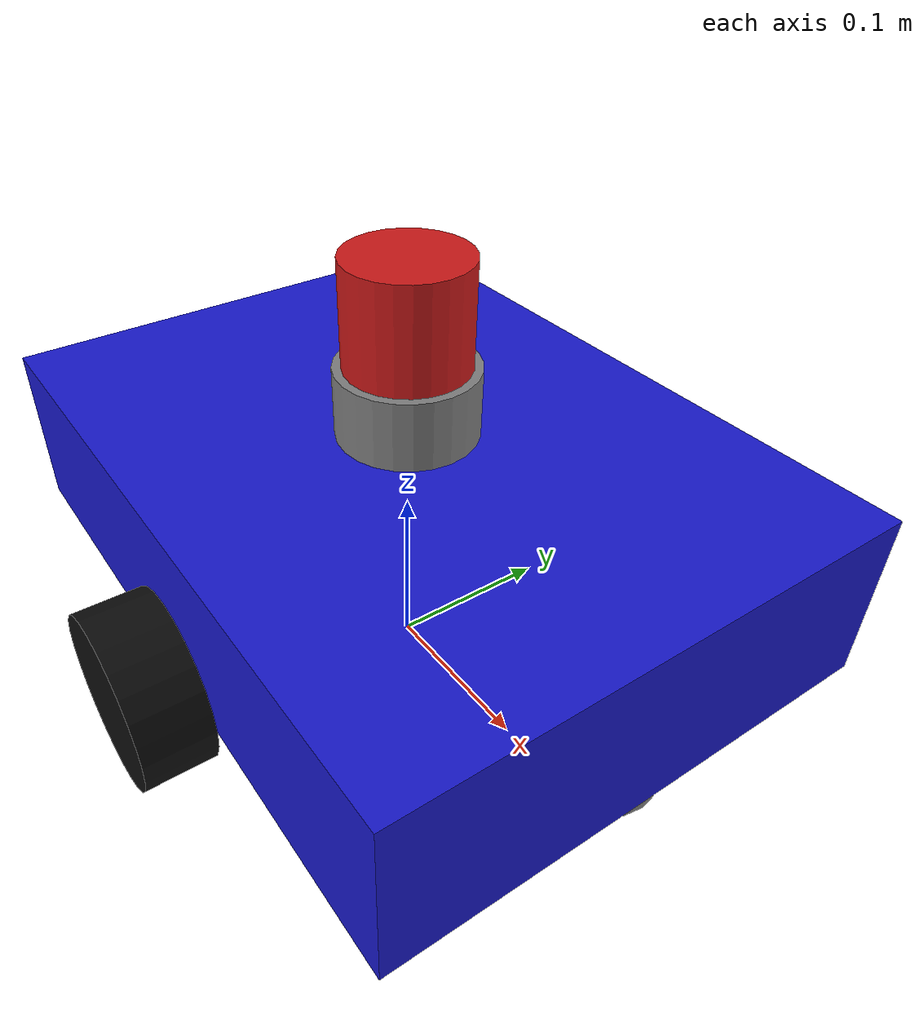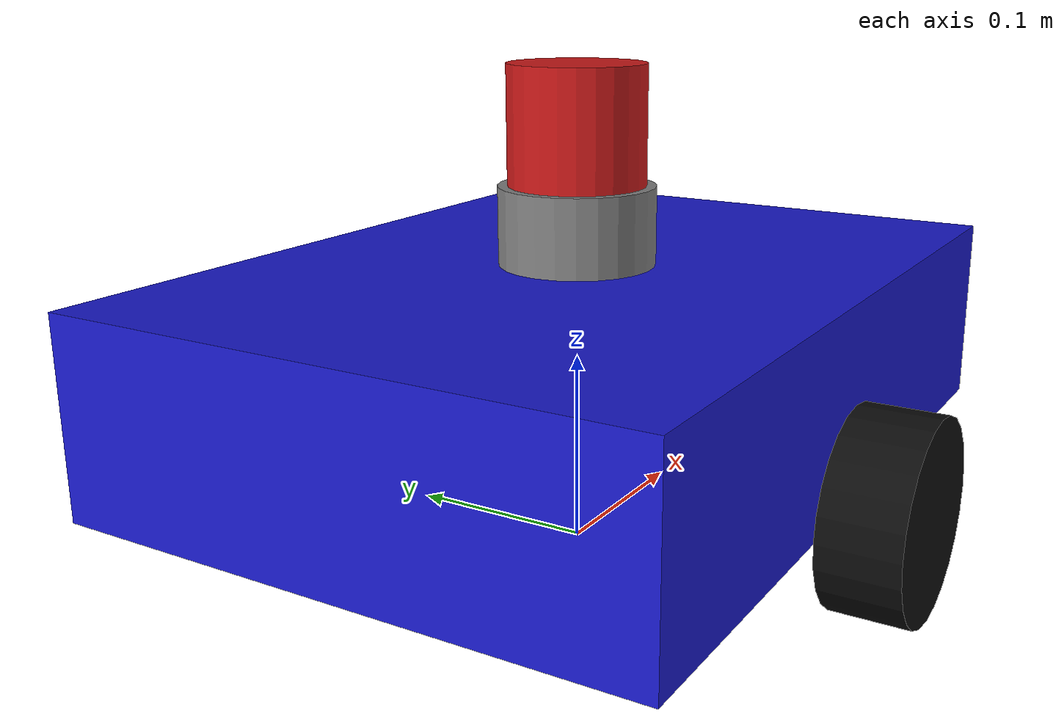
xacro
<?xml version="1.0"?>
<robot name="default_robot" xmlns:xacro="http://www.ros.org/wiki/xacro">

    <xacro:arg name="robot_name" default="robot_001"/>

    <!-- Chassis -->
    <xacro:property name="chassis_length" value="0.4"/>  <!-- meters -->
    <xacro:property name="chassis_width"  value="0.3"/>
    <xacro:property name="chassis_height" value="0.1"/>
    <xacro:property name="chassis_mass"   value="5.0"/>  <!-- kg -->

    <!-- Drive wheels (x2) -->
    <xacro:property name="wheel_radius"   value="0.05"/>
    <xacro:property name="wheel_width"    value="0.04"/>
    <xacro:property name="wheel_mass"     value="0.5"/>

    <!-- Front caster wheel (passive, for stability) -->
    <xacro:property name="caster_radius"  value="0.025"/>

    <!-- LiDAR sensor -->
    <xacro:property name="lidar_height"   value="0.18"/>

    <!-- =====================================================
        MATERIALS (colors for RViz visualization)
        ===================================================== -->
    <material name="dark_blue">
        <color rgba="0.1 0.1 0.8 1.0"/>
    </material>
    <material name="black">
        <color rgba="0.05 0.05 0.05 1.0"/>
    </material>
    <material name="gray">
        <color rgba="0.5 0.5 0.5 1.0"/>
    </material>
    <material name="red">
        <color rgba="0.8 0.1 0.1 1.0"/>
    </material>

    <link name="base_footprint"/>

    <joint name="base_joint" type="fixed">
        <parent link="base_footprint"/>
        <child  link="base_link"/>
        <!-- Raise chassis above ground: wheel radius + half chassis height -->
        <origin xyz="0 0 ${wheel_radius + chassis_height/2}" rpy="0 0 0"/>
    </joint>

    <link name="base_link">

        <!-- VISUAL: what you see in Gazebo/RViz -->
        <visual>
            <origin xyz="0 0 0" rpy="0 0 0"/>
            <geometry>
                <box size="${chassis_length} ${chassis_width} ${chassis_height}"/>
            </geometry>
            <material name="dark_blue"/>
        </visual>

        <!-- COLLISION: shape used for collision detection -->
        <collision>
            <origin xyz="0 0 0" rpy="0 0 0"/>
            <geometry>
                <box size="${chassis_length} ${chassis_width} ${chassis_height}"/>
            </geometry>
        </collision>

        <!-- INERTIAL: physical properties for realistic simulation
            Without this Gazebo cannot simulate forces correctly.
            Formula: inertia tensor of a solid uniform box. -->
        <inertial>
            <mass value="${chassis_mass}"/>
            <inertia
                ixx="${chassis_mass/12 * (chassis_width**2  + chassis_height**2)}"
                iyy="${chassis_mass/12 * (chassis_length**2 + chassis_height**2)}"
                izz="${chassis_mass/12 * (chassis_length**2 + chassis_width**2)}"
                ixy="0" ixz="0" iyz="0"
            />
        </inertial>
    </link>

    <xacro:macro name="wheel" params="prefix reflect">

        <link name="${prefix}_wheel">
            <visual>
                <!-- rpy="1.5708 0 0" rotates 90° around X to stand the cylinder upright -->
                <origin xyz="0 0 0" rpy="1.5708 0 0"/>
                <geometry>
                    <cylinder radius="${wheel_radius}" length="${wheel_width}"/>
                </geometry>
                <material name="black"/>
            </visual>
            <collision>
                <origin xyz="0 0 0" rpy="1.5708 0 0"/>
                <geometry>
                    <cylinder radius="${wheel_radius}" length="${wheel_width}"/>
                </geometry>
            </collision>
            <inertial>
                <mass value="${wheel_mass}"/>
                <!-- Inertia tensor of a solid cylinder -->
                <inertia
                    ixx="${wheel_mass/12 * (3*wheel_radius**2 + wheel_width**2)}"
                    iyy="${wheel_mass/12 * (3*wheel_radius**2 + wheel_width**2)}"
                    izz="${wheel_mass/2  *  wheel_radius**2}"
                    ixy="0" ixz="0" iyz="0"
                />
            </inertial>
        </link>

        <!-- "continuous" joint = unlimited rotation (wheel spins forever) -->
        <joint name="${prefix}_wheel_joint" type="continuous">
            <parent link="base_link"/>
            <child  link="${prefix}_wheel"/>
            <!-- reflect controls which side: +Y (left) or -Y (right) -->
            <origin
                xyz="0 ${reflect * (chassis_width/2 + wheel_width/2)} ${-chassis_height/2}"
                rpy="0 0 0"
            />
            <!-- Wheel rotates around Y axis -->
            <axis xyz="0 1 0"/>
        </joint>

    </xacro:macro>

    <!-- Create left and right wheels using the macro -->
    <xacro:wheel prefix="left"  reflect="1"/>
    <xacro:wheel prefix="right" reflect="-1"/>

    <link name="caster_wheel">
        <visual>
            <geometry>
                <sphere radius="${caster_radius}"/>
            </geometry>
            <material name="gray"/>
        </visual>
        <collision>
            <geometry>
                <sphere radius="${caster_radius}"/>
            </geometry>
        </collision>
        <inertial>
            <mass value="0.1"/>
            <inertia
                ixx="0.0001" iyy="0.0001" izz="0.0001"
                ixy="0"      ixz="0"      iyz="0"
            />
        </inertial>
    </link>

    <joint name="caster_joint" type="fixed">
        <parent link="base_link"/>
        <child  link="caster_wheel"/>
        <origin
            xyz="${chassis_length/2 - caster_radius} 0 ${-chassis_height/2}"
            rpy="0 0 0"
        />
    </joint>

    <!-- =====================================================
        LIDAR MOUNT (physical support cylinder)
        ===================================================== -->
    <link name="lidar_mount">
        <visual>
            <geometry>
                <cylinder radius="0.04" length="0.04"/>
            </geometry>
            <material name="gray"/>
        </visual>
        <collision>
            <geometry>
                <cylinder radius="0.04" length="0.04"/>
            </geometry>
        </collision>
        <inertial>
            <mass value="0.1"/>
            <inertia
                ixx="0.0001" iyy="0.0001" izz="0.0001"
                ixy="0"      ixz="0"      iyz="0"
            />
        </inertial>
    </link>

    <joint name="lidar_mount_joint" type="fixed">
        <parent link="base_link"/>
        <child  link="lidar_mount"/>
        <origin xyz="0 0 ${chassis_height/2 + 0.02}" rpy="0 0 0"/>
    </joint>

    <link name="lidar_link">
        <visual>
            <geometry>
                <cylinder radius="0.035" length="0.06"/>
            </geometry>
            <material name="red"/>
        </visual>
        <collision>
            <geometry>
                <cylinder radius="0.035" length="0.06"/>
            </geometry>
        </collision>
        <inertial>
            <mass value="0.2"/>
            <inertia
                ixx="0.0001" iyy="0.0001" izz="0.0001"
                ixy="0"      ixz="0"      iyz="0"
            />
        </inertial>
    </link>

    <joint name="lidar_joint" type="fixed">
        <parent link="lidar_mount"/>
        <child  link="lidar_link"/>
        <origin xyz="0 0 0.05" rpy="0 0 0"/>
    </joint>

    <!-- =====================================================
        GAZEBO PLUGINS
        These activate simulated hardware in Gazebo.
        ===================================================== -->

    <gazebo>
        <plugin name="diff_drive" filename="libgazebo_ros_diff_drive.so">
            <ros>
                <namespace>$(arg robot_name)</namespace>
            </ros>
            <left_joint>left_wheel_joint</left_joint>
            <right_joint>right_wheel_joint</right_joint>
            <wheel_separation>${chassis_width + wheel_width}</wheel_separation>
            <wheel_diameter>${2 * wheel_radius}</wheel_diameter>
            <max_wheel_torque>20</max_wheel_torque>
            <max_wheel_acceleration>1.0</max_wheel_acceleration>
            <command_topic>cmd_vel</command_topic>
            <odometry_topic>odom</odometry_topic>
            <odometry_frame>odom</odometry_frame>
            <robot_base_frame>base_footprint</robot_base_frame>
            <publish_odom>true</publish_odom>
            <publish_odom_tf>true</publish_odom_tf>
            <publish_wheel_tf>true</publish_wheel_tf>
        </plugin>
    </gazebo>

    <!-- LiDAR plugin
        Publishes : /scan (sensor_msgs/LaserScan)
        Effect    : simulates a 360° laser scanner with realistic noise -->
    <gazebo reference="lidar_link">
        <sensor name="lidar" type="ray">
            <always_on>true</always_on>
            <visualize>true</visualize>
            <update_rate>10</update_rate>
            <ray>
                <scan>
                    <horizontal>
                        <samples>360</samples>       <!-- one ray per degree -->
                        <resolution>1</resolution>
                        <min_angle>-3.14159</min_angle>
                        <max_angle>3.14159</max_angle>
                    </horizontal>
                </scan>
                <range>
                    <min>0.12</min>                <!-- 12 cm minimum range -->
                    <max>10.0</max>                <!-- 10 m maximum range -->
                    <resolution>0.01</resolution>
                </range>
                <!-- Gaussian noise: simulates real sensor imprecision -->
                <noise>
                    <type>gaussian</type>
                    <mean>0.0</mean>
                    <stddev>0.01</stddev>          <!-- ±1 cm standard deviation -->
                </noise>
            </ray>
            <plugin name="lidar_plugin" filename="libgazebo_ros_ray_sensor.so">
                <ros>
                    <namespace>$(arg robot_name)</namespace>
                    <remapping>~/out:=scan</remapping>
                </ros>
                <output_type>sensor_msgs/LaserScan</output_type>
                <frame_name>lidar_link</frame_name>
            </plugin>
        </sensor>
    </gazebo>

</robot>
